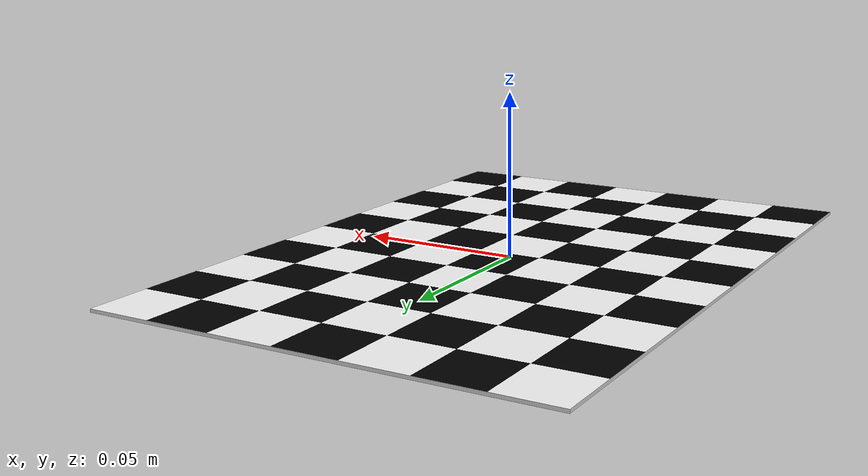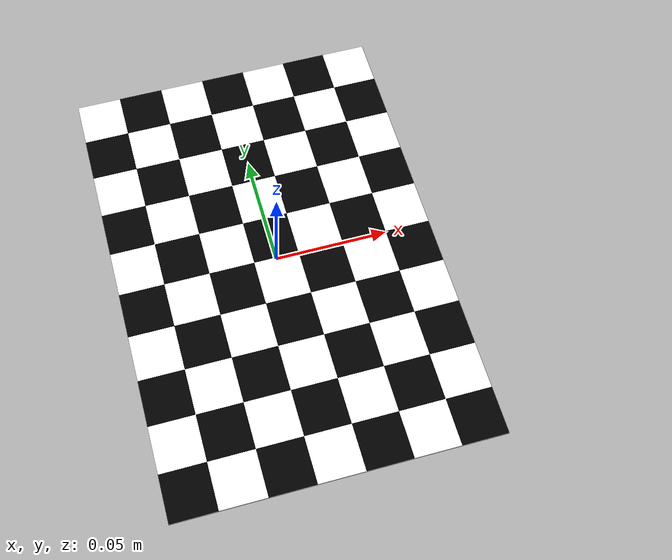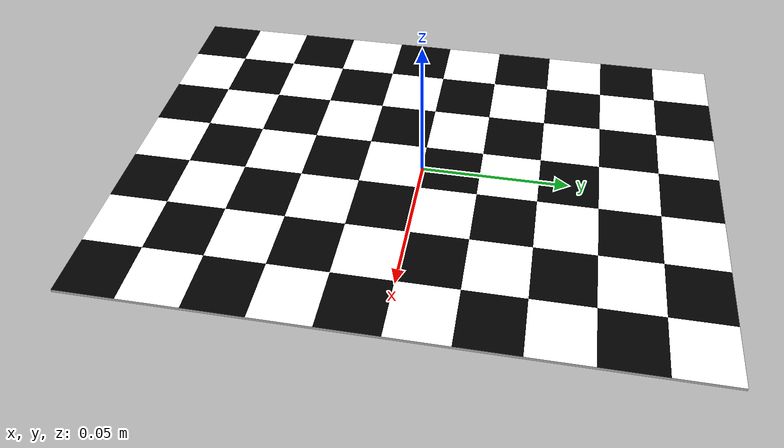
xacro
<?xml version="1.0"?>
<robot xmlns:xacro="http://wiki.ros.org/xacro" name="chessboard">

    <xacro:include filename="$(find camera_in_cali_pkg)/urdf/inertial.xacro"/>
    <link name="chessboard_link">
        <xacro:box_inertial x="0.14" y="0.2" z="0.001" mass="0.1">
            <origin xyz="0.0 0.0 0.0" rpy="0 0 0"/>
        </xacro:box_inertial>

        <collision name="collision">
            <geometry>
                <box size="0.14 0.2 0.001"/>
            </geometry>
        </collision>

        <visual name="visual">
            <geometry>
                <mesh filename="package://camera_in_cali_pkg/meshes/chessboard.dae"/>
            </geometry>
        </visual>

    </link>

    <gazebo reference="chessboard_link">
        <pose>0 0 0.0005 0 0 0</pose>
    </gazebo>

    <gazebo>
        <static>1</static>
    </gazebo>

</robot>

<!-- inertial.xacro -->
<robot xmlns:xacro="http://wiki.ros.org/xacro">
    <xacro:macro name="box_inertial" params="mass x y z *origin">
       <inertial>
           <xacro:insert_block name="origin"/>
           <mass value="${ mass}" />
           <inertia
               ixx="${1/12* mass*( y* y+ z* z)}"
               iyy="${1/12* mass*( x* x+ z* z)}"
               izz="${1/12* mass*( x* x+ y* y)}"
               ixy="0" ixz="0" iyz="0"/>
       </inertial>
    </xacro:macro>
</robot>
